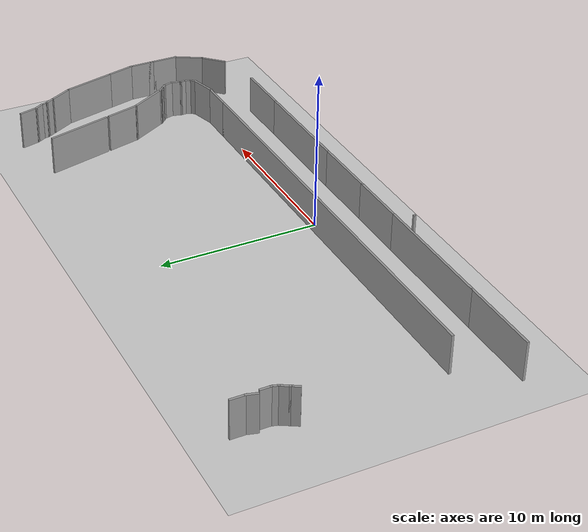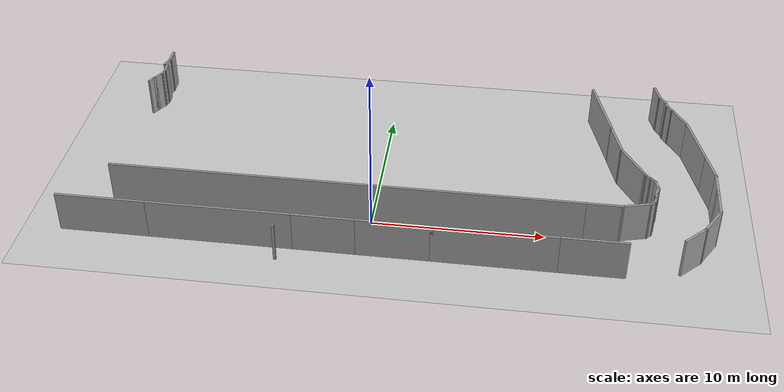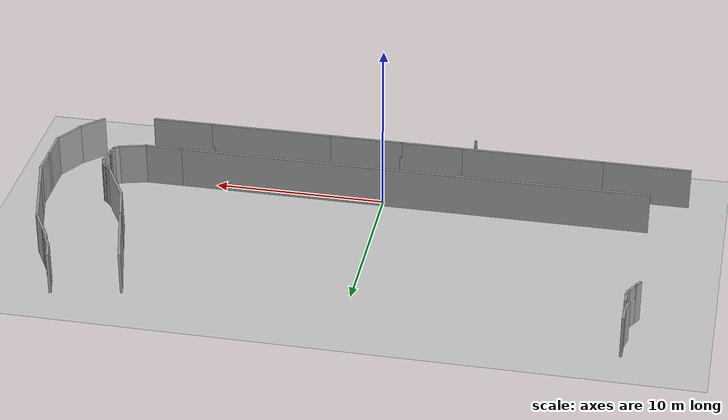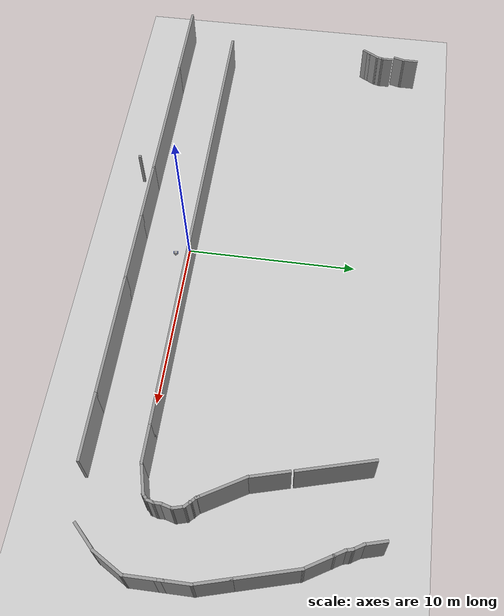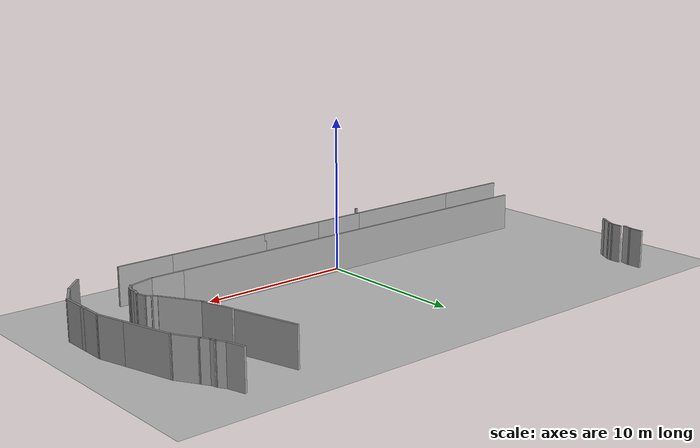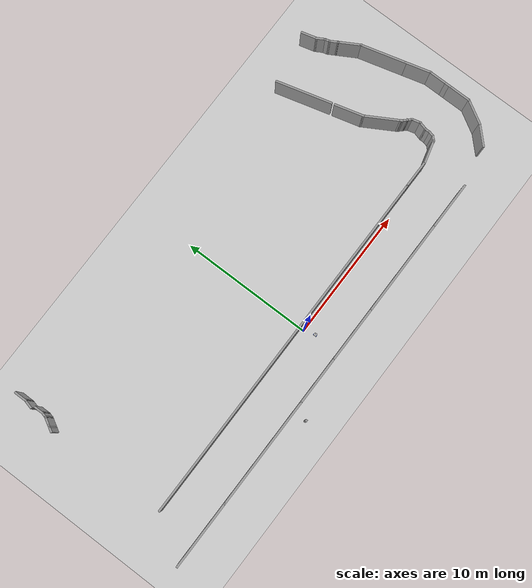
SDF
<sdf version="1.7">
 <world name="default">
  <model name="ground_plane">
   <static>1</static>
   <link name="link">
    <collision name="collision">
     <geometry><plane><normal>0 0 1</normal><size>100 100</size></plane></geometry>
     <surface><friction><ode><mu>100</mu><mu2>50</mu2></ode></friction></surface>
    </collision>
    <visual name="visual">
     <cast_shadows>0</cast_shadows>
     <geometry><plane><normal>0 0 1</normal><size>100 100</size></plane></geometry>
     <material>
      <script><uri>file://media/materials/scripts/gazebo.material</uri><name>Gazebo/Grey</name></script>
     </material>
    </visual>
   </link>
  </model>
  <model name="my_bot">
   <link name="base_link">
    <inertial>
     <pose>0.082719 0 0.037808 0 -0 0</pose>
     <mass>1.46</mass>
     <inertia>
      <ixx>0.00934224</ixx>
      <ixy>2.30231e-19</ixy>
      <ixz>0.000950699</ixz>
      <iyy>0.0102249</iyy>
      <iyz>1.19797e-19</iyz>
      <izz>0.00981571</izz>
     </inertia>
    </inertial>
    <collision name="base_link_fixed_joint_lump__chassis_collision">
     <pose>0.05 0 0.01 0 -0 0</pose>
     <geometry><box><size>0.2 0.2 0.02</size></box></geometry>
    </collision>
    <collision name="base_link_fixed_joint_lump__imu_link_collision_1">
     <pose>0.027 0 0.02 0 -0 0</pose>
     <geometry><box><size>0.03 0.02 0.01</size></box></geometry>
    </collision>
    <collision name="base_link_fixed_joint_lump__caster_wheel_collision_2">
     <pose>0.13 0 -0.04 0 -0 0</pose>
     <geometry><sphere><radius>0.04</radius></sphere></geometry>
     <surface><friction><ode><mu>0.001</mu><mu2>0.001</mu2></ode></friction></surface>
    </collision>
    <collision name="base_link_fixed_joint_lump__chassis1_collision_3">
     <pose>0.05 0 0.09 0 -0 0</pose>
     <geometry><box><size>0.2 0.2 0.02</size></box></geometry>
    </collision>
    <collision name="base_link_fixed_joint_lump__pole1_collision_4">
     <pose>0 0.08 0.05 0 -0 0</pose>
     <geometry><cylinder><length>0.1</length><radius>0.005</radius></cylinder></geometry>
    </collision>
    <collision name="base_link_fixed_joint_lump__pole2_collision_5">
     <pose>0 -0.08 0.05 0 -0 0</pose>
     <geometry><cylinder><length>0.1</length><radius>0.005</radius></cylinder></geometry>
    </collision>
    <collision name="base_link_fixed_joint_lump__pole3_collision_6">
     <pose>0.13 -0.08 0.05 0 -0 0</pose>
     <geometry><cylinder><length>0.1</length><radius>0.005</radius></cylinder></geometry>
    </collision>
    <collision name="base_link_fixed_joint_lump__pole4_collision_7">
     <pose>0.13 0.08 0.05 0 -0 0</pose>
     <geometry><cylinder><length>0.1</length><radius>0.005</radius></cylinder></geometry>
    </collision>
    <collision name="base_link_fixed_joint_lump__lidar_scanner_collision_8">
     <pose>0.12 0 0.12 0 -0 0</pose>
     <geometry><cylinder><length>0.02</length><radius>0.05</radius></cylinder></geometry>
    </collision>
    <visual name="base_link_fixed_joint_lump__chassis_visual">
     <pose>0.05 0 0.01 0 -0 0</pose>
     <geometry><box><size>0.2 0.2 0.02</size></box></geometry>
     <material>
      <script><name>Gazebo/white</name><uri>file://media/materials/scripts/gazebo.material</uri></script>
     </material>
    </visual>
    <visual name="base_link_fixed_joint_lump__imu_link_visual_1">
     <pose>0.027 0 0.02 0 -0 0</pose>
     <geometry><box><size>0.03 0.02 0.01</size></box></geometry>
    </visual>
    <visual name="base_link_fixed_joint_lump__caster_wheel_visual_2">
     <pose>0.13 0 -0.04 0 -0 0</pose>
     <geometry><sphere><radius>0.04</radius></sphere></geometry>
     <material>
      <script><name>Gazebo/Black</name><uri>file://media/materials/scripts/gazebo.material</uri></script>
     </material>
    </visual>
    <visual name="base_link_fixed_joint_lump__chassis1_visual_3">
     <pose>0.05 0 0.09 0 -0 0</pose>
     <geometry><box><size>0.2 0.2 0.02</size></box></geometry>
    </visual>
    <visual name="base_link_fixed_joint_lump__pole1_visual_4">
     <pose>0 0.08 0.05 0 -0 0</pose>
     <geometry><cylinder><length>0.1</length><radius>0.005</radius></cylinder></geometry>
    </visual>
    <visual name="base_link_fixed_joint_lump__pole2_visual_5">
     <pose>0 -0.08 0.05 0 -0 0</pose>
     <geometry><cylinder><length>0.1</length><radius>0.005</radius></cylinder></geometry>
    </visual>
    <visual name="base_link_fixed_joint_lump__pole3_visual_6">
     <pose>0.13 -0.08 0.05 0 -0 0</pose>
     <geometry><cylinder><length>0.1</length><radius>0.005</radius></cylinder></geometry>
    </visual>
    <visual name="base_link_fixed_joint_lump__pole4_visual_7">
     <pose>0.13 0.08 0.05 0 -0 0</pose>
     <geometry><cylinder><length>0.1</length><radius>0.005</radius></cylinder></geometry>
    </visual>
    <visual name="base_link_fixed_joint_lump__lidar_scanner_visual_8">
     <pose>0.12 0 0.12 0 -0 0</pose>
     <geometry><cylinder><length>0.02</length><radius>0.05</radius></cylinder></geometry>
     <material>
      <script><name>Gazebo/lidar_colcor</name><uri>file://media/materials/scripts/gazebo.material</uri></script>
     </material>
    </visual>
    <sensor name="imu_sensor" type="imu">
     <always_on>1</always_on>
     <update_rate>100</update_rate>
     <visualize>1</visualize>
     <topic>__default_topic__</topic>
     <plugin name="imu_plugin" filename="libgazebo_ros_imu_sensor.so">
      <topicName>imu</topicName>
      <bodyName>imu_link</bodyName>
      <updateRateHZ>10.0</updateRateHZ>
      <gaussianNoise>0.0</gaussianNoise>
      <xyzOffset>0 0 0</xyzOffset>
      <rpyOffset>0 0 0</rpyOffset>
      <frameName>imu_link</frameName>
      <initialOrientationAsReference>0</initialOrientationAsReference>
     </plugin>
     <pose>0.027 0 0.02 0 -0 0</pose>
    </sensor>
    <sensor name="laser" type="ray">
     <visualize>1</visualize>
     <update_rate>10</update_rate>
     <ray>
      <scan>
       <horizontal>
        <samples>60</samples>
        <min_angle>-3.14</min_angle>
        <max_angle>3.14</max_angle>
        <resolution>1</resolution>
       </horizontal>
       <vertical><samples>1</samples><min_angle>0</min_angle><max_angle>0</max_angle></vertical>
      </scan>
      <range><min>0.3</min><max>20</max></range>
     </ray>
     <plugin name="laser_controller" filename="libgazebo_ros_ray_sensor.so">
      <ros><remap>~/out:=scan</remap></ros>
      <output_type>sensor_msgs/LaserScan</output_type>
      <frame_name>laser_frame</frame_name>
     </plugin>
     <pose>0.12 0 0.12 0 -0 0</pose>
    </sensor>
   </link>
   <joint name="left_wheel_to_base_link" type="revolute">
    <pose relative_to="base_link">0 0.115 0 1.5708 -0 0</pose>
    <parent>base_link</parent>
    <child>left_wheel</child>
    <axis>
     <xyz>0 0 1</xyz>
     <limit><lower>-1e+16</lower><upper>1e+16</upper></limit>
     <dynamics><spring_reference>0</spring_reference><spring_stiffness>0</spring_stiffness></dynamics>
    </axis>
   </joint>
   <link name="left_wheel">
    <pose relative_to="left_wheel_to_base_link">0 0 0 0 -0 0</pose>
    <inertial>
     <mass>0.1</mass>
     <inertia>
      <ixx>0.0001675</ixx>
      <ixy>0</ixy>
      <ixz>0</ixz>
      <iyy>0.0001675</iyy>
      <iyz>0</iyz>
      <izz>0.00032</izz>
     </inertia>
    </inertial>
    <collision name="left_wheel_collision">
     <geometry><cylinder><length>0.03</length><radius>0.08</radius></cylinder></geometry>
    </collision>
    <visual name="left_wheel_visual">
     <geometry><cylinder><length>0.03</length><radius>0.08</radius></cylinder></geometry>
     <material>
      <script><name>Gazebo/Blue</name><uri>file://media/materials/scripts/gazebo.material</uri></script>
     </material>
    </visual>
   </link>
   <joint name="right_wheel_to_base_link" type="revolute">
    <pose relative_to="base_link">0 -0.115 0 -1.5708 0 0</pose>
    <parent>base_link</parent>
    <child>right_wheel</child>
    <axis>
     <xyz>0 0 -1</xyz>
     <limit><lower>-1e+16</lower><upper>1e+16</upper></limit>
     <dynamics><spring_reference>0</spring_reference><spring_stiffness>0</spring_stiffness></dynamics>
    </axis>
   </joint>
   <link name="right_wheel">
    <pose relative_to="right_wheel_to_base_link">0 0 0 0 -0 0</pose>
    <inertial>
     <mass>0.1</mass>
     <inertia>
      <ixx>0.0001675</ixx>
      <ixy>0</ixy>
      <ixz>0</ixz>
      <iyy>0.0001675</iyy>
      <iyz>0</iyz>
      <izz>0.00032</izz>
     </inertia>
    </inertial>
    <collision name="right_wheel_collision">
     <geometry><cylinder><length>0.03</length><radius>0.08</radius></cylinder></geometry>
    </collision>
    <visual name="right_wheel_visual">
     <geometry><cylinder><length>0.03</length><radius>0.08</radius></cylinder></geometry>
     <material>
      <script><name>Gazebo/Blue</name><uri>file://media/materials/scripts/gazebo.material</uri></script>
     </material>
    </visual>
   </link>
   <static>0</static>
   <plugin name="gazebo_ros2_control" filename="libgazebo_ros2_control.so">
    <parameters>/home/pohrselvan/ros2_ws/src/install/july_9/share/july_9/config/wheel_controller.yaml</parameters>
   </plugin>
   <pose>0.264185 -0.79315 0.079997 -2.9e-05 1.1e-05 0.08352</pose>
  </model>
  <model name="Untitled">
   <pose>-1.78886 14.7141 0 0 -0 0</pose>
   <link name="Wall_1">
    <collision name="Wall_1_Collision">
     <geometry><box><size>0.15 0.15 2.5</size></box></geometry>
     <pose>0 0 1.25 0 -0 0</pose>
    </collision>
    <visual name="Wall_1_Visual">
     <pose>0 0 1.25 0 -0 0</pose>
     <geometry><box><size>0.15 0.15 2.5</size></box></geometry>
     <material>
      <script><uri>file://media/materials/scripts/gazebo.material</uri><name>Gazebo/Grey</name></script>
      <ambient>1 1 1 1</ambient>
     </material>
     <meta><layer>0</layer></meta>
    </visual>
    <pose>-3.11984 -18.5273 0 0 -0 0</pose>
   </link>
   <link name="Wall_136">
    <collision name="Wall_136_Collision">
     <geometry><box><size>1.75 0.15 2.5</size></box></geometry>
     <pose>0 0 1.25 0 -0 0</pose>
    </collision>
    <visual name="Wall_136_Visual">
     <pose>0 0 1.25 0 -0 0</pose>
     <geometry><box><size>1.75 0.15 2.5</size></box></geometry>
     <material>
      <script><uri>file://media/materials/scripts/gazebo.material</uri><name>Gazebo/Grey</name></script>
      <ambient>1 1 1 1</ambient>
     </material>
     <meta><layer>0</layer></meta>
    </visual>
    <pose>19.873 -16.3472 0 0 -0 0.785398</pose>
   </link>
   <link name="Wall_137">
    <collision name="Wall_137_Collision">
     <geometry><box><size>2 0.15 2.5</size></box></geometry>
     <pose>0 0 1.25 0 -0 0</pose>
    </collision>
    <visual name="Wall_137_Visual">
     <pose>0 0 1.25 0 -0 0</pose>
     <geometry><box><size>2 0.15 2.5</size></box></geometry>
     <material>
      <script><uri>file://media/materials/scripts/gazebo.material</uri><name>Gazebo/Grey</name></script>
      <ambient>1 1 1 1</ambient>
     </material>
     <meta><layer>0</layer></meta>
    </visual>
    <pose>20.9012 -14.9804 0 0 -0 1.0472</pose>
   </link>
   <link name="Wall_138">
    <collision name="Wall_138_Collision">
     <geometry><box><size>1.75 0.15 2.5</size></box></geometry>
     <pose>0 0 1.25 0 -0 0</pose>
    </collision>
    <visual name="Wall_138_Visual">
     <pose>0 0 1.25 0 -0 0</pose>
     <geometry><box><size>1.75 0.15 2.5</size></box></geometry>
     <material>
      <script><uri>file://media/materials/scripts/gazebo.material</uri><name>Gazebo/Grey</name></script>
      <ambient>1 1 1 1</ambient>
     </material>
     <meta><layer>0</layer></meta>
    </visual>
    <pose>21.3637 -13.3794 0 0 -0 1.5708</pose>
   </link>
   <link name="Wall_139">
    <collision name="Wall_139_Collision">
     <geometry><box><size>0.5 0.15 2.5</size></box></geometry>
     <pose>0 0 1.25 0 -0 0</pose>
    </collision>
    <visual name="Wall_139_Visual">
     <pose>0 0 1.25 0 -0 0</pose>
     <geometry><box><size>0.5 0.15 2.5</size></box></geometry>
     <material>
      <script><uri>file://media/materials/scripts/gazebo.material</uri><name>Gazebo/Grey</name></script>
      <ambient>1 1 1 1</ambient>
     </material>
     <meta><layer>0</layer></meta>
    </visual>
    <pose>21.3637 -12.4044 0 0 -0 1.5708</pose>
   </link>
   <link name="Wall_14">
    <collision name="Wall_14_Collision">
     <geometry><box><size>7.25 0.15 2.5</size></box></geometry>
     <pose>0 0 1.25 0 -0 0</pose>
    </collision>
    <visual name="Wall_14_Visual">
     <pose>0 0 1.25 0 -0 0</pose>
     <geometry><box><size>7.25 0.15 2.5</size></box></geometry>
     <material>
      <script><uri>file://media/materials/scripts/gazebo.material</uri><name>Gazebo/Grey</name></script>
      <ambient>1 1 1 1</ambient>
     </material>
     <meta><layer>0</layer></meta>
    </visual>
    <pose>9.10016 -17.5273 0 0 -0 0</pose>
   </link>
   <link name="Wall_140">
    <collision name="Wall_140_Collision">
     <geometry><box><size>1.5 0.15 2.5</size></box></geometry>
     <pose>0 0 1.25 0 -0 0</pose>
    </collision>
    <visual name="Wall_140_Visual">
     <pose>0 0 1.25 0 -0 0</pose>
     <geometry><box><size>1.5 0.15 2.5</size></box></geometry>
     <material>
      <script><uri>file://media/materials/scripts/gazebo.material</uri><name>Gazebo/Grey</name></script>
      <ambient>1 1 1 1</ambient>
     </material>
     <meta><layer>0</layer></meta>
    </visual>
    <pose>21.3637 -11.5544 0 0 -0 1.5708</pose>
   </link>
   <link name="Wall_141">
    <collision name="Wall_141_Collision">
     <geometry><box><size>2 0.15 2.5</size></box></geometry>
     <pose>0 0 1.25 0 -0 0</pose>
    </collision>
    <visual name="Wall_141_Visual">
     <pose>0 0 1.25 0 -0 0</pose>
     <geometry><box><size>2 0.15 2.5</size></box></geometry>
     <material>
      <script><uri>file://media/materials/scripts/gazebo.material</uri><name>Gazebo/Grey</name></script>
      <ambient>1 1 1 1</ambient>
     </material>
     <meta><layer>0</layer></meta>
    </visual>
    <pose>21.1243 -9.98589 0 0 -0 1.8326</pose>
   </link>
   <link name="Wall_142">
    <collision name="Wall_142_Collision">
     <geometry><box><size>3.5 0.15 2.5</size></box></geometry>
     <pose>0 0 1.25 0 -0 0</pose>
    </collision>
    <visual name="Wall_142_Visual">
     <pose>0 0 1.25 0 -0 0</pose>
     <geometry><box><size>3.5 0.15 2.5</size></box></geometry>
     <material>
      <script><uri>file://media/materials/scripts/gazebo.material</uri><name>Gazebo/Grey</name></script>
      <ambient>1 1 1 1</ambient>
     </material>
     <meta><layer>0</layer></meta>
    </visual>
    <pose>20.4513 -7.47448 0 0 -0 1.8326</pose>
   </link>
   <link name="Wall_144">
    <collision name="Wall_144_Collision">
     <geometry><box><size>1.75 0.15 2.5</size></box></geometry>
     <pose>0 0 1.25 0 -0 0</pose>
    </collision>
    <visual name="Wall_144_Visual">
     <pose>0 0 1.25 0 -0 0</pose>
     <geometry><box><size>1.75 0.15 2.5</size></box></geometry>
     <material>
      <script><uri>file://media/materials/scripts/gazebo.material</uri><name>Gazebo/Grey</name></script>
      <ambient>1 1 1 1</ambient>
     </material>
     <meta><layer>0</layer></meta>
    </visual>
    <pose>19.6178 -5.16374 0 0 -0 2.0944</pose>
   </link>
   <link name="Wall_145">
    <collision name="Wall_145_Collision">
     <geometry><box><size>0.15 0.15 2.5</size></box></geometry>
     <pose>0 0 1.25 0 -0 0</pose>
    </collision>
    <visual name="Wall_145_Visual">
     <pose>0 0 1.25 0 -0 0</pose>
     <geometry><box><size>0.15 0.15 2.5</size></box></geometry>
     <material>
      <script><uri>file://media/materials/scripts/gazebo.material</uri><name>Gazebo/Grey</name></script>
      <ambient>1 1 1 1</ambient>
     </material>
     <meta><layer>0</layer></meta>
    </visual>
    <pose>19.2178 -4.47092 0 0 -0 0</pose>
   </link>
   <link name="Wall_146">
    <collision name="Wall_146_Collision">
     <geometry><box><size>0.75 0.15 2.5</size></box></geometry>
     <pose>0 0 1.25 0 -0 0</pose>
    </collision>
    <visual name="Wall_146_Visual">
     <pose>0 0 1.25 0 -0 0</pose>
     <geometry><box><size>0.75 0.15 2.5</size></box></geometry>
     <material>
      <script><uri>file://media/materials/scripts/gazebo.material</uri><name>Gazebo/Grey</name></script>
      <ambient>1 1 1 1</ambient>
     </material>
     <meta><layer>0</layer></meta>
    </visual>
    <pose>19.0678 -4.21111 0 0 -0 2.0944</pose>
   </link>
   <link name="Wall_147">
    <collision name="Wall_147_Collision">
     <geometry><box><size>0.5 0.15 2.5</size></box></geometry>
     <pose>0 0 1.25 0 -0 0</pose>
    </collision>
    <visual name="Wall_147_Visual">
     <pose>0 0 1.25 0 -0 0</pose>
     <geometry><box><size>0.5 0.15 2.5</size></box></geometry>
     <material>
      <script><uri>file://media/materials/scripts/gazebo.material</uri><name>Gazebo/Grey</name></script>
      <ambient>1 1 1 1</ambient>
     </material>
     <meta><layer>0</layer></meta>
    </visual>
    <pose>18.8725 -3.78227 0 0 -0 1.8326</pose>
   </link>
   <link name="Wall_148">
    <collision name="Wall_148_Collision">
     <geometry><box><size>0.75 0.15 2.5</size></box></geometry>
     <pose>0 0 1.25 0 -0 0</pose>
    </collision>
    <visual name="Wall_148_Visual">
     <pose>0 0 1.25 0 -0 0</pose>
     <geometry><box><size>0.75 0.15 2.5</size></box></geometry>
     <material>
      <script><uri>file://media/materials/scripts/gazebo.material</uri><name>Gazebo/Grey</name></script>
      <ambient>1 1 1 1</ambient>
     </material>
     <meta><layer>0</layer></meta>
    </visual>
    <pose>18.6772 -3.35342 0 0 -0 2.0944</pose>
   </link>
   <link name="Wall_149">
    <collision name="Wall_149_Collision">
     <geometry><box><size>1.25 0.15 2.5</size></box></geometry>
     <pose>0 0 1.25 0 -0 0</pose>
    </collision>
    <visual name="Wall_149_Visual">
     <pose>0 0 1.25 0 -0 0</pose>
     <geometry><box><size>1.25 0.15 2.5</size></box></geometry>
     <material>
      <script><uri>file://media/materials/scripts/gazebo.material</uri><name>Gazebo/Grey</name></script>
      <ambient>1 1 1 1</ambient>
     </material>
     <meta><layer>0</layer></meta>
    </visual>
    <pose>18.3849 -2.56235 0 0 -0 1.8326</pose>
   </link>
   <link name="Wall_16">
    <collision name="Wall_16_Collision">
     <geometry><box><size>3.75 0.15 2.5</size></box></geometry>
     <pose>0 0 1.25 0 -0 0</pose>
    </collision>
    <visual name="Wall_16_Visual">
     <pose>0 0 1.25 0 -0 0</pose>
     <geometry><box><size>3.75 0.15 2.5</size></box></geometry>
     <material>
      <script><uri>file://media/materials/scripts/gazebo.material</uri><name>Gazebo/Grey</name></script>
      <ambient>1 1 1 1</ambient>
     </material>
     <meta><layer>0</layer></meta>
    </visual>
    <pose>14.4502 -17.5273 0 0 -0 0</pose>
   </link>
   <link name="Wall_220">
    <collision name="Wall_220_Collision">
     <geometry><box><size>0.5 0.15 2.5</size></box></geometry>
     <pose>0 0 1.25 0 -0 0</pose>
    </collision>
    <visual name="Wall_220_Visual">
     <pose>0 0 1.25 0 -0 0</pose>
     <geometry><box><size>0.5 0.15 2.5</size></box></geometry>
     <material>
      <script><uri>file://media/materials/scripts/gazebo.material</uri><name>Gazebo/Grey</name></script>
      <ambient>1 1 1 1</ambient>
     </material>
     <meta><layer>0</layer></meta>
    </visual>
    <pose>-13.9243 -5.29702 0 0 -0 1.0472</pose>
   </link>
   <link name="Wall_221">
    <collision name="Wall_221_Collision">
     <geometry><box><size>0.25 0.15 2.5</size></box></geometry>
     <pose>0 0 1.25 0 -0 0</pose>
    </collision>
    <visual name="Wall_221_Visual">
     <pose>0 0 1.25 0 -0 0</pose>
     <geometry><box><size>0.25 0.15 2.5</size></box></geometry>
     <material>
      <script><uri>file://media/materials/scripts/gazebo.material</uri><name>Gazebo/Grey</name></script>
      <ambient>1 1 1 1</ambient>
     </material>
     <meta><layer>0</layer></meta>
    </visual>
    <pose>-13.8118 -5.10217 0 0 -0 1.0472</pose>
   </link>
   <link name="Wall_222">
    <collision name="Wall_222_Collision">
     <geometry><box><size>0.75 0.15 2.5</size></box></geometry>
     <pose>0 0 1.25 0 -0 0</pose>
    </collision>
    <visual name="Wall_222_Visual">
     <pose>0 0 1.25 0 -0 0</pose>
     <geometry><box><size>0.75 0.15 2.5</size></box></geometry>
     <material>
      <script><uri>file://media/materials/scripts/gazebo.material</uri><name>Gazebo/Grey</name></script>
      <ambient>1 1 1 1</ambient>
     </material>
     <meta><layer>0</layer></meta>
    </visual>
    <pose>-13.6368 -4.79906 0 0 -0 1.0472</pose>
   </link>
   <link name="Wall_223">
    <collision name="Wall_223_Collision">
     <geometry><box><size>0.5 0.15 2.5</size></box></geometry>
     <pose>0 0 1.25 0 -0 0</pose>
    </collision>
    <visual name="Wall_223_Visual">
     <pose>0 0 1.25 0 -0 0</pose>
     <geometry><box><size>0.5 0.15 2.5</size></box></geometry>
     <material>
      <script><uri>file://media/materials/scripts/gazebo.material</uri><name>Gazebo/Grey</name></script>
      <ambient>1 1 1 1</ambient>
     </material>
     <meta><layer>0</layer></meta>
    </visual>
    <pose>-13.4415 -4.37021 0 0 -0 1.309</pose>
   </link>
   <link name="Wall_224">
    <collision name="Wall_224_Collision">
     <geometry><box><size>0.75 0.15 2.5</size></box></geometry>
     <pose>0 0 1.25 0 -0 0</pose>
    </collision>
    <visual name="Wall_224_Visual">
     <pose>0 0 1.25 0 -0 0</pose>
     <geometry><box><size>0.75 0.15 2.5</size></box></geometry>
     <material>
      <script><uri>file://media/materials/scripts/gazebo.material</uri><name>Gazebo/Grey</name></script>
      <ambient>1 1 1 1</ambient>
     </material>
     <meta><layer>0</layer></meta>
    </visual>
    <pose>-13.3962 -3.90118 0 0 -0 1.5708</pose>
   </link>
   <link name="Wall_226">
    <collision name="Wall_226_Collision">
     <geometry><box><size>0.75 0.15 2.5</size></box></geometry>
     <pose>0 0 1.25 0 -0 0</pose>
    </collision>
    <visual name="Wall_226_Visual">
     <pose>0 0 1.25 0 -0 0</pose>
     <geometry><box><size>0.75 0.15 2.5</size></box></geometry>
     <material>
      <script><uri>file://media/materials/scripts/gazebo.material</uri><name>Gazebo/Grey</name></script>
      <ambient>1 1 1 1</ambient>
     </material>
     <meta><layer>0</layer></meta>
    </visual>
    <pose>-13.5142 -3.07475 0 0 -0 1.309</pose>
   </link>
   <link name="Wall_227">
    <collision name="Wall_227_Collision">
     <geometry><box><size>1 0.15 2.5</size></box></geometry>
     <pose>0 0 1.25 0 -0 0</pose>
    </collision>
    <visual name="Wall_227_Visual">
     <pose>0 0 1.25 0 -0 0</pose>
     <geometry><box><size>1 0.15 2.5</size></box></geometry>
     <material>
      <script><uri>file://media/materials/scripts/gazebo.material</uri><name>Gazebo/Grey</name></script>
      <ambient>1 1 1 1</ambient>
     </material>
     <meta><layer>0</layer></meta>
    </visual>
    <pose>-13.4365 -2.35997 0 0 -0 1.5708</pose>
   </link>
   <link name="Wall_28">
    <collision name="Wall_28_Collision">
     <geometry><box><size>8.5 0.15 2.5</size></box></geometry>
     <pose>0 0 1.25 0 -0 0</pose>
    </collision>
    <visual name="Wall_28_Visual">
     <pose>0 0 1.25 0 -0 0</pose>
     <geometry><box><size>8.5 0.15 2.5</size></box></geometry>
     <material>
      <script><uri>file://media/materials/scripts/gazebo.material</uri><name>Gazebo/Grey</name></script>
      <ambient>1 1 1 1</ambient>
     </material>
     <meta><layer>0</layer></meta>
    </visual>
    <pose>-6.57484 -17.5273 0 0 -0 3.14159</pose>
   </link>
   <link name="Wall_31">
    <collision name="Wall_31_Collision">
     <geometry><box><size>5.25 0.15 2.5</size></box></geometry>
     <pose>0 0 1.25 0 -0 0</pose>
    </collision>
    <visual name="Wall_31_Visual">
     <pose>0 0 1.25 0 -0 0</pose>
     <geometry><box><size>5.25 0.15 2.5</size></box></geometry>
     <material>
      <script><uri>file://media/materials/scripts/gazebo.material</uri><name>Gazebo/Grey</name></script>
      <ambient>1 1 1 1</ambient>
     </material>
     <meta><layer>0</layer></meta>
    </visual>
    <pose>-13.2998 -17.5273 0 0 -0 3.14159</pose>
   </link>
   <link name="Wall_39">
    <collision name="Wall_39_Collision">
     <geometry><box><size>27.75 0.15 2.5</size></box></geometry>
     <pose>0 0 1.25 0 -0 0</pose>
    </collision>
    <visual name="Wall_39_Visual">
     <pose>0 0 1.25 0 -0 0</pose>
     <geometry><box><size>27.75 0.15 2.5</size></box></geometry>
     <material>
      <script><uri>file://media/materials/scripts/gazebo.material</uri><name>Gazebo/Grey</name></script>
      <ambient>1 1 1 1</ambient>
     </material>
     <meta><layer>0</layer></meta>
    </visual>
    <pose>0.077612 -14.3772 0 0 -0 0</pose>
   </link>
   <link name="Wall_41">
    <collision name="Wall_41_Collision">
     <geometry><box><size>2.25 0.15 2.5</size></box></geometry>
     <pose>0 0 1.25 0 -0 0</pose>
    </collision>
    <visual name="Wall_41_Visual">
     <pose>0 0 1.25 0 -0 0</pose>
     <geometry><box><size>2.25 0.15 2.5</size></box></geometry>
     <material>
      <script><uri>file://media/materials/scripts/gazebo.material</uri><name>Gazebo/Grey</name></script>
      <ambient>1 1 1 1</ambient>
     </material>
     <meta><layer>0</layer></meta>
    </visual>
    <pose>14.9276 -14.3772 0 0 -0 0</pose>
   </link>
   <link name="Wall_42">
    <collision name="Wall_42_Collision">
     <geometry><box><size>1.75 0.15 2.5</size></box></geometry>
     <pose>0 0 1.25 0 -0 0</pose>
    </collision>
    <visual name="Wall_42_Visual">
     <pose>0 0 1.25 0 -0 0</pose>
     <geometry><box><size>1.75 0.15 2.5</size></box></geometry>
     <material>
      <script><uri>file://media/materials/scripts/gazebo.material</uri><name>Gazebo/Grey</name></script>
      <ambient>1 1 1 1</ambient>
     </material>
     <meta><layer>0</layer></meta>
    </visual>
    <pose>16.7504 -14.1702 0 0 -0 0.261799</pose>
   </link>
   <link name="Wall_43">
    <collision name="Wall_43_Collision">
     <geometry><box><size>0.5 0.15 2.5</size></box></geometry>
     <pose>0 0 1.25 0 -0 0</pose>
    </collision>
    <visual name="Wall_43_Visual">
     <pose>0 0 1.25 0 -0 0</pose>
     <geometry><box><size>0.5 0.15 2.5</size></box></geometry>
     <material>
      <script><uri>file://media/materials/scripts/gazebo.material</uri><name>Gazebo/Grey</name></script>
      <ambient>1 1 1 1</ambient>
     </material>
     <meta><layer>0</layer></meta>
    </visual>
    <pose>17.6468 -13.8394 0 0 -0 0.785398</pose>
   </link>
   <link name="Wall_44">
    <collision name="Wall_44_Collision">
     <geometry><box><size>0.5 0.15 2.5</size></box></geometry>
     <pose>0 0 1.25 0 -0 0</pose>
    </collision>
    <visual name="Wall_44_Visual">
     <pose>0 0 1.25 0 -0 0</pose>
     <geometry><box><size>0.5 0.15 2.5</size></box></geometry>
     <material>
      <script><uri>file://media/materials/scripts/gazebo.material</uri><name>Gazebo/Grey</name></script>
      <ambient>1 1 1 1</ambient>
     </material>
     <meta><layer>0</layer></meta>
    </visual>
    <pose>17.8159 -13.5466 0 0 -0 1.309</pose>
   </link>
   <link name="Wall_45">
    <collision name="Wall_45_Collision">
     <geometry><box><size>0.5 0.15 2.5</size></box></geometry>
     <pose>0 0 1.25 0 -0 0</pose>
    </collision>
    <visual name="Wall_45_Visual">
     <pose>0 0 1.25 0 -0 0</pose>
     <geometry><box><size>0.5 0.15 2.5</size></box></geometry>
     <material>
      <script><uri>file://media/materials/scripts/gazebo.material</uri><name>Gazebo/Grey</name></script>
      <ambient>1 1 1 1</ambient>
     </material>
     <meta><layer>0</layer></meta>
    </visual>
    <pose>17.8612 -13.2025 0 0 -0 1.5708</pose>
   </link>
   <link name="Wall_46">
    <collision name="Wall_46_Collision">
     <geometry><box><size>0.75 0.15 2.5</size></box></geometry>
     <pose>0 0 1.25 0 -0 0</pose>
    </collision>
    <visual name="Wall_46_Visual">
     <pose>0 0 1.25 0 -0 0</pose>
     <geometry><box><size>0.75 0.15 2.5</size></box></geometry>
     <material>
      <script><uri>file://media/materials/scripts/gazebo.material</uri><name>Gazebo/Grey</name></script>
      <ambient>1 1 1 1</ambient>
     </material>
     <meta><layer>0</layer></meta>
    </visual>
    <pose>17.9388 -12.7378 0 0 -0 1.309</pose>
   </link>
   <link name="Wall_47">
    <collision name="Wall_47_Collision">
     <geometry><box><size>0.75 0.15 2.5</size></box></geometry>
     <pose>0 0 1.25 0 -0 0</pose>
    </collision>
    <visual name="Wall_47_Visual">
     <pose>0 0 1.25 0 -0 0</pose>
     <geometry><box><size>0.75 0.15 2.5</size></box></geometry>
     <material>
      <script><uri>file://media/materials/scripts/gazebo.material</uri><name>Gazebo/Grey</name></script>
      <ambient>1 1 1 1</ambient>
     </material>
     <meta><layer>0</layer></meta>
    </visual>
    <pose>17.9388 -12.1582 0 0 -0 1.8326</pose>
   </link>
   <link name="Wall_48">
    <collision name="Wall_48_Collision">
     <geometry><box><size>0.5 0.15 2.5</size></box></geometry>
     <pose>0 0 1.25 0 -0 0</pose>
    </collision>
    <visual name="Wall_48_Visual">
     <pose>0 0 1.25 0 -0 0</pose>
     <geometry><box><size>0.5 0.15 2.5</size></box></geometry>
     <material>
      <script><uri>file://media/materials/scripts/gazebo.material</uri><name>Gazebo/Grey</name></script>
      <ambient>1 1 1 1</ambient>
     </material>
     <meta><layer>0</layer></meta>
    </visual>
    <pose>17.7374 -11.7447 0 0 -0 2.35619</pose>
   </link>
   <link name="Wall_49">
    <collision name="Wall_49_Collision">
     <geometry><box><size>0.15 0.15 2.5</size></box></geometry>
     <pose>0 0 1.25 0 -0 0</pose>
    </collision>
    <visual name="Wall_49_Visual">
     <pose>0 0 1.25 0 -0 0</pose>
     <geometry><box><size>0.15 0.15 2.5</size></box></geometry>
     <material>
      <script><uri>file://media/materials/scripts/gazebo.material</uri><name>Gazebo/Grey</name></script>
      <ambient>1 1 1 1</ambient>
     </material>
     <meta><layer>0</layer></meta>
    </visual>
    <pose>17.6137 -11.6209 0 0 -0 0</pose>
   </link>
   <link name="Wall_5">
    <collision name="Wall_5_Collision">
     <geometry><box><size>3.75 0.15 2.5</size></box></geometry>
     <pose>0 0 1.25 0 -0 0</pose>
    </collision>
    <visual name="Wall_5_Visual">
     <pose>0 0 1.25 0 -0 0</pose>
     <geometry><box><size>3.75 0.15 2.5</size></box></geometry>
     <material>
      <script><uri>file://media/materials/scripts/gazebo.material</uri><name>Gazebo/Grey</name></script>
      <ambient>1 1 1 1</ambient>
     </material>
     <meta><layer>0</layer></meta>
    </visual>
    <pose>-0.599836 -17.5273 0 0 -0 0</pose>
   </link>
   <link name="Wall_50">
    <collision name="Wall_50_Collision">
     <geometry><box><size>0.5 0.15 2.5</size></box></geometry>
     <pose>0 0 1.25 0 -0 0</pose>
    </collision>
    <visual name="Wall_50_Visual">
     <pose>0 0 1.25 0 -0 0</pose>
     <geometry><box><size>0.5 0.15 2.5</size></box></geometry>
     <material>
      <script><uri>file://media/materials/scripts/gazebo.material</uri><name>Gazebo/Grey</name></script>
      <ambient>1 1 1 1</ambient>
     </material>
     <meta><layer>0</layer></meta>
    </visual>
    <pose>17.4899 -11.4972 0 0 -0 2.35619</pose>
   </link>
   <link name="Wall_51">
    <collision name="Wall_51_Collision">
     <geometry><box><size>0.25 0.15 2.5</size></box></geometry>
     <pose>0 0 1.25 0 -0 0</pose>
    </collision>
    <visual name="Wall_51_Visual">
     <pose>0 0 1.25 0 -0 0</pose>
     <geometry><box><size>0.25 0.15 2.5</size></box></geometry>
     <material>
      <script><uri>file://media/materials/scripts/gazebo.material</uri><name>Gazebo/Grey</name></script>
      <ambient>1 1 1 1</ambient>
     </material>
     <meta><layer>0</layer></meta>
    </visual>
    <pose>17.3412 -11.3302 0 0 -0 2.0944</pose>
   </link>
   <link name="Wall_52">
    <collision name="Wall_52_Collision">
     <geometry><box><size>2.75 0.15 2.5</size></box></geometry>
     <pose>0 0 1.25 0 -0 0</pose>
    </collision>
    <visual name="Wall_52_Visual">
     <pose>0 0 1.25 0 -0 0</pose>
     <geometry><box><size>2.75 0.15 2.5</size></box></geometry>
     <material>
      <script><uri>file://media/materials/scripts/gazebo.material</uri><name>Gazebo/Grey</name></script>
      <ambient>1 1 1 1</ambient>
     </material>
     <meta><layer>0</layer></meta>
    </visual>
    <pose>16.6662 -10.161 0 0 -0 2.0944</pose>
   </link>
   <link name="Wall_53">
    <collision name="Wall_53_Collision">
     <geometry><box><size>2.25 0.15 2.5</size></box></geometry>
     <pose>0 0 1.25 0 -0 0</pose>
    </collision>
    <visual name="Wall_53_Visual">
     <pose>0 0 1.25 0 -0 0</pose>
     <geometry><box><size>2.25 0.15 2.5</size></box></geometry>
     <material>
      <script><uri>file://media/materials/scripts/gazebo.material</uri><name>Gazebo/Grey</name></script>
      <ambient>1 1 1 1</ambient>
     </material>
     <meta><layer>0</layer></meta>
    </visual>
    <pose>15.7444 -8.02097 0 0 -0 1.8326</pose>
   </link>
   <link name="Wall_55">
    <collision name="Wall_55_Collision">
     <geometry><box><size>4.25 0.15 2.5</size></box></geometry>
     <pose>0 0 1.25 0 -0 0</pose>
    </collision>
    <visual name="Wall_55_Visual">
     <pose>0 0 1.25 0 -0 0</pose>
     <geometry><box><size>4.25 0.15 2.5</size></box></geometry>
     <material>
      <script><uri>file://media/materials/scripts/gazebo.material</uri><name>Gazebo/Grey</name></script>
      <ambient>1 1 1 1</ambient>
     </material>
     <meta><layer>0</layer></meta>
    </visual>
    <pose>14.8805 -4.74775 0 0 -0 1.8326</pose>
   </link>
   <link name="Wall_7">
    <collision name="Wall_7_Collision">
     <geometry><box><size>4.5 0.15 2.5</size></box></geometry>
     <pose>0 0 1.25 0 -0 0</pose>
    </collision>
    <visual name="Wall_7_Visual">
     <pose>0 0 1.25 0 -0 0</pose>
     <geometry><box><size>4.5 0.15 2.5</size></box></geometry>
     <material>
      <script><uri>file://media/materials/scripts/gazebo.material</uri><name>Gazebo/Grey</name></script>
      <ambient>1 1 1 1</ambient>
     </material>
     <meta><layer>0</layer></meta>
    </visual>
    <pose>3.37516 -17.5273 0 0 -0 0</pose>
   </link>
   <static>1</static>
  </model>
 </world>
</sdf>
